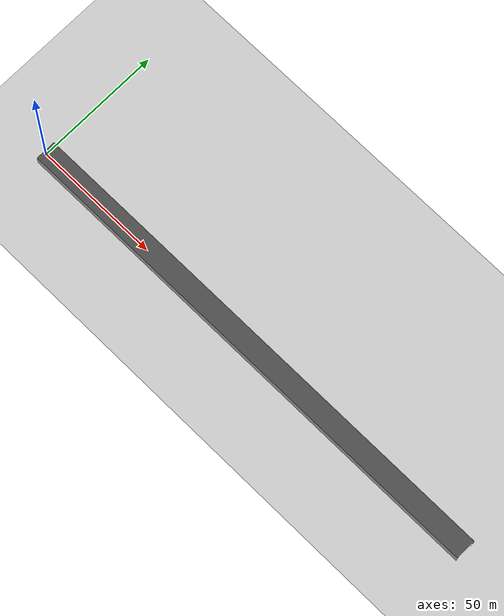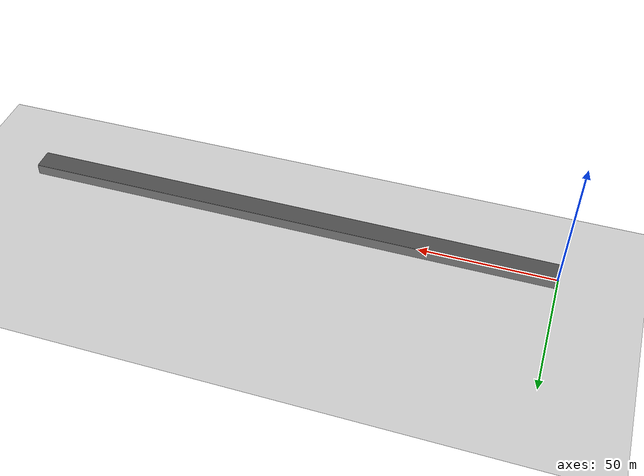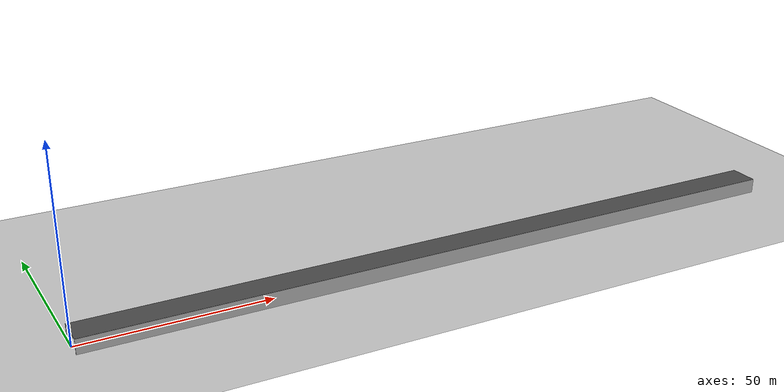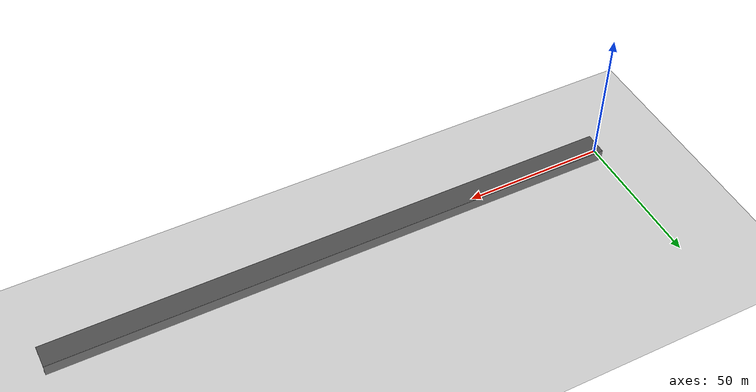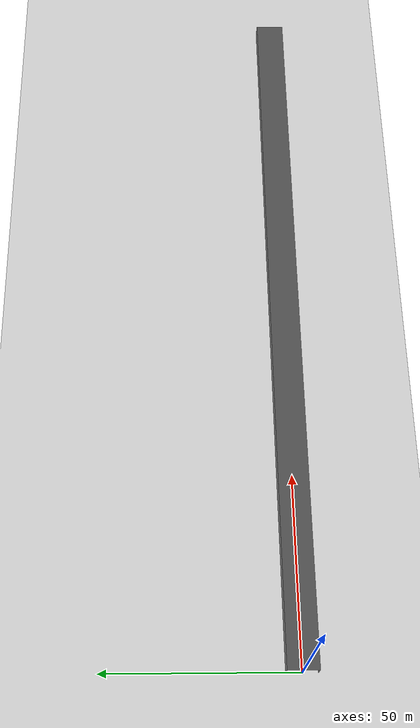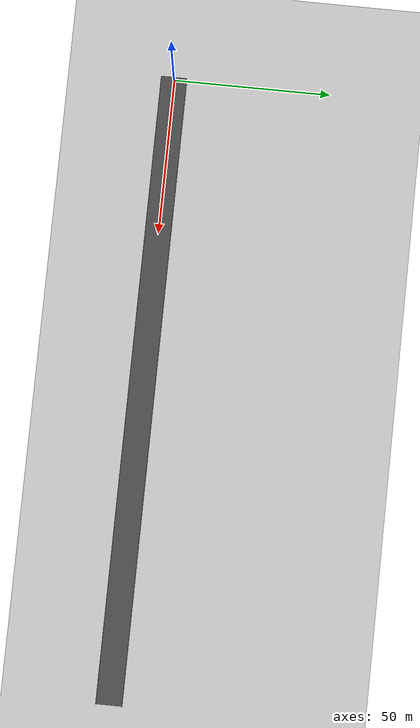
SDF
<?xml version="1.0" ?>
<sdf version="1.6">
  <world name="tunnel_world">
    <include><uri>model://sun</uri></include>
    <include><uri>model://ground_plane</uri></include>

    <model name="tunnel_walls">
      <static>true</static>
      <link name="link">
        <!-- 左墙 -->
        <visual name="wall_left_vis">
          <pose>100.0 4.0 2.0 0 0 0</pose>
          <geometry><box><size>200.0 0.2 4.0</size></box></geometry>
          <material><script><name>Gazebo/Grey</name></script></material>
        </visual>
        <collision name="wall_left_col">
          <pose>100.0 4.0 2.0 0 0 0</pose>
          <geometry><box><size>200.0 0.2 4.0</size></box></geometry>
        </collision>

        <!-- 右墙 -->
        <visual name="wall_right_vis">
          <pose>100.0 -4.0 2.0 0 0 0</pose>
          <geometry><box><size>200.0 0.2 4.0</size></box></geometry>
          <material><script><name>Gazebo/Grey</name></script></material>
        </visual>
        <collision name="wall_right_col">
          <pose>100.0 -4.0 2.0 0 0 0</pose>
          <geometry><box><size>200.0 0.2 4.0</size></box></geometry>
        </collision>

        <!-- 天花板 (可选，为了像隧道) -->
        <visual name="ceiling">
          <pose>100.0 0 4.0 0 0 0</pose>
          <geometry><box><size>200.0 8.0 0.1</size></box></geometry>
          <material><script><name>Gazebo/DarkGrey</name></script></material>
        </visual>
      </link>
    </model>

    <model name="ref_pole_0">
      <pose>0.0 3.0 0.5 0 0 0</pose>
      <static>true</static>
      <link name="link">
        <collision name="collision">
          <geometry><cylinder><radius>0.1</radius><length>1.0</length></cylinder></geometry>
          <laser_retro>200.0</laser_retro>
        </collision>
        <visual name="visual">
          <geometry><cylinder><radius>0.1</radius><length>1.0</length></cylinder></geometry>
          <material><script><name>Gazebo/White</name></script></material>
        </visual>
      </link>
    </model>

    <model name="ref_pole_1">
      <pose>5.0 3.0 0.5 0 0 0</pose>
      <static>true</static>
      <link name="link">
        <collision name="collision">
          <geometry><cylinder><radius>0.1</radius><length>1.0</length></cylinder></geometry>
          <laser_retro>200.0</laser_retro>
        </collision>
        <visual name="visual">
          <geometry><cylinder><radius>0.1</radius><length>1.0</length></cylinder></geometry>
          <material><script><name>Gazebo/White</name></script></material>
        </visual>
      </link>
    </model>

    <model name="ref_pole_2">
      <pose>10.0 3.0 0.5 0 0 0</pose>
      <static>true</static>
      <link name="link">
        <collision name="collision">
          <geometry><cylinder><radius>0.1</radius><length>1.0</length></cylinder></geometry>
          <laser_retro>200.0</laser_retro>
        </collision>
        <visual name="visual">
          <geometry><cylinder><radius>0.1</radius><length>1.0</length></cylinder></geometry>
          <material><script><name>Gazebo/White</name></script></material>
        </visual>
      </link>
    </model>

    <model name="ref_pole_3">
      <pose>15.0 3.0 0.5 0 0 0</pose>
      <static>true</static>
      <link name="link">
        <collision name="collision">
          <geometry><cylinder><radius>0.1</radius><length>1.0</length></cylinder></geometry>
          <laser_retro>200.0</laser_retro>
        </collision>
        <visual name="visual">
          <geometry><cylinder><radius>0.1</radius><length>1.0</length></cylinder></geometry>
          <material><script><name>Gazebo/White</name></script></material>
        </visual>
      </link>
    </model>

    <model name="ref_pole_4">
      <pose>20.0 3.0 0.5 0 0 0</pose>
      <static>true</static>
      <link name="link">
        <collision name="collision">
          <geometry><cylinder><radius>0.1</radius><length>1.0</length></cylinder></geometry>
          <laser_retro>200.0</laser_retro>
        </collision>
        <visual name="visual">
          <geometry><cylinder><radius>0.1</radius><length>1.0</length></cylinder></geometry>
          <material><script><name>Gazebo/White</name></script></material>
        </visual>
      </link>
    </model>

    <model name="ref_pole_5">
      <pose>25.0 3.0 0.5 0 0 0</pose>
      <static>true</static>
      <link name="link">
        <collision name="collision">
          <geometry><cylinder><radius>0.1</radius><length>1.0</length></cylinder></geometry>
          <laser_retro>200.0</laser_retro>
        </collision>
        <visual name="visual">
          <geometry><cylinder><radius>0.1</radius><length>1.0</length></cylinder></geometry>
          <material><script><name>Gazebo/White</name></script></material>
        </visual>
      </link>
    </model>

    <model name="ref_pole_6">
      <pose>30.0 3.0 0.5 0 0 0</pose>
      <static>true</static>
      <link name="link">
        <collision name="collision">
          <geometry><cylinder><radius>0.1</radius><length>1.0</length></cylinder></geometry>
          <laser_retro>200.0</laser_retro>
        </collision>
        <visual name="visual">
          <geometry><cylinder><radius>0.1</radius><length>1.0</length></cylinder></geometry>
          <material><script><name>Gazebo/White</name></script></material>
        </visual>
      </link>
    </model>

    <model name="ref_pole_7">
      <pose>35.0 3.0 0.5 0 0 0</pose>
      <static>true</static>
      <link name="link">
        <collision name="collision">
          <geometry><cylinder><radius>0.1</radius><length>1.0</length></cylinder></geometry>
          <laser_retro>200.0</laser_retro>
        </collision>
        <visual name="visual">
          <geometry><cylinder><radius>0.1</radius><length>1.0</length></cylinder></geometry>
          <material><script><name>Gazebo/White</name></script></material>
        </visual>
      </link>
    </model>

    <model name="ref_pole_8">
      <pose>40.0 3.0 0.5 0 0 0</pose>
      <static>true</static>
      <link name="link">
        <collision name="collision">
          <geometry><cylinder><radius>0.1</radius><length>1.0</length></cylinder></geometry>
          <laser_retro>200.0</laser_retro>
        </collision>
        <visual name="visual">
          <geometry><cylinder><radius>0.1</radius><length>1.0</length></cylinder></geometry>
          <material><script><name>Gazebo/White</name></script></material>
        </visual>
      </link>
    </model>

    <model name="ref_pole_9">
      <pose>45.0 3.0 0.5 0 0 0</pose>
      <static>true</static>
      <link name="link">
        <collision name="collision">
          <geometry><cylinder><radius>0.1</radius><length>1.0</length></cylinder></geometry>
          <laser_retro>200.0</laser_retro>
        </collision>
        <visual name="visual">
          <geometry><cylinder><radius>0.1</radius><length>1.0</length></cylinder></geometry>
          <material><script><name>Gazebo/White</name></script></material>
        </visual>
      </link>
    </model>

    <model name="ref_pole_10">
      <pose>50.0 3.0 0.5 0 0 0</pose>
      <static>true</static>
      <link name="link">
        <collision name="collision">
          <geometry><cylinder><radius>0.1</radius><length>1.0</length></cylinder></geometry>
          <laser_retro>200.0</laser_retro>
        </collision>
        <visual name="visual">
          <geometry><cylinder><radius>0.1</radius><length>1.0</length></cylinder></geometry>
          <material><script><name>Gazebo/White</name></script></material>
        </visual>
      </link>
    </model>

    <model name="ref_pole_11">
      <pose>55.0 3.0 0.5 0 0 0</pose>
      <static>true</static>
      <link name="link">
        <collision name="collision">
          <geometry><cylinder><radius>0.1</radius><length>1.0</length></cylinder></geometry>
          <laser_retro>200.0</laser_retro>
        </collision>
        <visual name="visual">
          <geometry><cylinder><radius>0.1</radius><length>1.0</length></cylinder></geometry>
          <material><script><name>Gazebo/White</name></script></material>
        </visual>
      </link>
    </model>

    <model name="ref_pole_12">
      <pose>60.0 3.0 0.5 0 0 0</pose>
      <static>true</static>
      <link name="link">
        <collision name="collision">
          <geometry><cylinder><radius>0.1</radius><length>1.0</length></cylinder></geometry>
          <laser_retro>200.0</laser_retro>
        </collision>
        <visual name="visual">
          <geometry><cylinder><radius>0.1</radius><length>1.0</length></cylinder></geometry>
          <material><script><name>Gazebo/White</name></script></material>
        </visual>
      </link>
    </model>

    <model name="ref_pole_13">
      <pose>65.0 3.0 0.5 0 0 0</pose>
      <static>true</static>
      <link name="link">
        <collision name="collision">
          <geometry><cylinder><radius>0.1</radius><length>1.0</length></cylinder></geometry>
          <laser_retro>200.0</laser_retro>
        </collision>
        <visual name="visual">
          <geometry><cylinder><radius>0.1</radius><length>1.0</length></cylinder></geometry>
          <material><script><name>Gazebo/White</name></script></material>
        </visual>
      </link>
    </model>

    <model name="ref_pole_14">
      <pose>70.0 3.0 0.5 0 0 0</pose>
      <static>true</static>
      <link name="link">
        <collision name="collision">
          <geometry><cylinder><radius>0.1</radius><length>1.0</length></cylinder></geometry>
          <laser_retro>200.0</laser_retro>
        </collision>
        <visual name="visual">
          <geometry><cylinder><radius>0.1</radius><length>1.0</length></cylinder></geometry>
          <material><script><name>Gazebo/White</name></script></material>
        </visual>
      </link>
    </model>

    <model name="ref_pole_15">
      <pose>75.0 3.0 0.5 0 0 0</pose>
      <static>true</static>
      <link name="link">
        <collision name="collision">
          <geometry><cylinder><radius>0.1</radius><length>1.0</length></cylinder></geometry>
          <laser_retro>200.0</laser_retro>
        </collision>
        <visual name="visual">
          <geometry><cylinder><radius>0.1</radius><length>1.0</length></cylinder></geometry>
          <material><script><name>Gazebo/White</name></script></material>
        </visual>
      </link>
    </model>

    <model name="ref_pole_16">
      <pose>80.0 3.0 0.5 0 0 0</pose>
      <static>true</static>
      <link name="link">
        <collision name="collision">
          <geometry><cylinder><radius>0.1</radius><length>1.0</length></cylinder></geometry>
          <laser_retro>200.0</laser_retro>
        </collision>
        <visual name="visual">
          <geometry><cylinder><radius>0.1</radius><length>1.0</length></cylinder></geometry>
          <material><script><name>Gazebo/White</name></script></material>
        </visual>
      </link>
    </model>

    <model name="ref_pole_17">
      <pose>85.0 3.0 0.5 0 0 0</pose>
      <static>true</static>
      <link name="link">
        <collision name="collision">
          <geometry><cylinder><radius>0.1</radius><length>1.0</length></cylinder></geometry>
          <laser_retro>200.0</laser_retro>
        </collision>
        <visual name="visual">
          <geometry><cylinder><radius>0.1</radius><length>1.0</length></cylinder></geometry>
          <material><script><name>Gazebo/White</name></script></material>
        </visual>
      </link>
    </model>

    <model name="ref_pole_18">
      <pose>90.0 3.0 0.5 0 0 0</pose>
      <static>true</static>
      <link name="link">
        <collision name="collision">
          <geometry><cylinder><radius>0.1</radius><length>1.0</length></cylinder></geometry>
          <laser_retro>200.0</laser_retro>
        </collision>
        <visual name="visual">
          <geometry><cylinder><radius>0.1</radius><length>1.0</length></cylinder></geometry>
          <material><script><name>Gazebo/White</name></script></material>
        </visual>
      </link>
    </model>

    <model name="ref_pole_19">
      <pose>95.0 3.0 0.5 0 0 0</pose>
      <static>true</static>
      <link name="link">
        <collision name="collision">
          <geometry><cylinder><radius>0.1</radius><length>1.0</length></cylinder></geometry>
          <laser_retro>200.0</laser_retro>
        </collision>
        <visual name="visual">
          <geometry><cylinder><radius>0.1</radius><length>1.0</length></cylinder></geometry>
          <material><script><name>Gazebo/White</name></script></material>
        </visual>
      </link>
    </model>

    <model name="ref_pole_20">
      <pose>100.0 3.0 0.5 0 0 0</pose>
      <static>true</static>
      <link name="link">
        <collision name="collision">
          <geometry><cylinder><radius>0.1</radius><length>1.0</length></cylinder></geometry>
          <laser_retro>200.0</laser_retro>
        </collision>
        <visual name="visual">
          <geometry><cylinder><radius>0.1</radius><length>1.0</length></cylinder></geometry>
          <material><script><name>Gazebo/White</name></script></material>
        </visual>
      </link>
    </model>

    <model name="ref_pole_21">
      <pose>105.0 3.0 0.5 0 0 0</pose>
      <static>true</static>
      <link name="link">
        <collision name="collision">
          <geometry><cylinder><radius>0.1</radius><length>1.0</length></cylinder></geometry>
          <laser_retro>200.0</laser_retro>
        </collision>
        <visual name="visual">
          <geometry><cylinder><radius>0.1</radius><length>1.0</length></cylinder></geometry>
          <material><script><name>Gazebo/White</name></script></material>
        </visual>
      </link>
    </model>

    <model name="ref_pole_22">
      <pose>110.0 3.0 0.5 0 0 0</pose>
      <static>true</static>
      <link name="link">
        <collision name="collision">
          <geometry><cylinder><radius>0.1</radius><length>1.0</length></cylinder></geometry>
          <laser_retro>200.0</laser_retro>
        </collision>
        <visual name="visual">
          <geometry><cylinder><radius>0.1</radius><length>1.0</length></cylinder></geometry>
          <material><script><name>Gazebo/White</name></script></material>
        </visual>
      </link>
    </model>

    <model name="ref_pole_23">
      <pose>115.0 3.0 0.5 0 0 0</pose>
      <static>true</static>
      <link name="link">
        <collision name="collision">
          <geometry><cylinder><radius>0.1</radius><length>1.0</length></cylinder></geometry>
          <laser_retro>200.0</laser_retro>
        </collision>
        <visual name="visual">
          <geometry><cylinder><radius>0.1</radius><length>1.0</length></cylinder></geometry>
          <material><script><name>Gazebo/White</name></script></material>
        </visual>
      </link>
    </model>

    <model name="ref_pole_24">
      <pose>120.0 3.0 0.5 0 0 0</pose>
      <static>true</static>
      <link name="link">
        <collision name="collision">
          <geometry><cylinder><radius>0.1</radius><length>1.0</length></cylinder></geometry>
          <laser_retro>200.0</laser_retro>
        </collision>
        <visual name="visual">
          <geometry><cylinder><radius>0.1</radius><length>1.0</length></cylinder></geometry>
          <material><script><name>Gazebo/White</name></script></material>
        </visual>
      </link>
    </model>

    <model name="ref_pole_25">
      <pose>125.0 3.0 0.5 0 0 0</pose>
      <static>true</static>
      <link name="link">
        <collision name="collision">
          <geometry><cylinder><radius>0.1</radius><length>1.0</length></cylinder></geometry>
          <laser_retro>200.0</laser_retro>
        </collision>
        <visual name="visual">
          <geometry><cylinder><radius>0.1</radius><length>1.0</length></cylinder></geometry>
          <material><script><name>Gazebo/White</name></script></material>
        </visual>
      </link>
    </model>

    <model name="ref_pole_26">
      <pose>130.0 3.0 0.5 0 0 0</pose>
      <static>true</static>
      <link name="link">
        <collision name="collision">
          <geometry><cylinder><radius>0.1</radius><length>1.0</length></cylinder></geometry>
          <laser_retro>200.0</laser_retro>
        </collision>
        <visual name="visual">
          <geometry><cylinder><radius>0.1</radius><length>1.0</length></cylinder></geometry>
          <material><script><name>Gazebo/White</name></script></material>
        </visual>
      </link>
    </model>

    <model name="ref_pole_27">
      <pose>135.0 3.0 0.5 0 0 0</pose>
      <static>true</static>
      <link name="link">
        <collision name="collision">
          <geometry><cylinder><radius>0.1</radius><length>1.0</length></cylinder></geometry>
          <laser_retro>200.0</laser_retro>
        </collision>
        <visual name="visual">
          <geometry><cylinder><radius>0.1</radius><length>1.0</length></cylinder></geometry>
          <material><script><name>Gazebo/White</name></script></material>
        </visual>
      </link>
    </model>

    <model name="ref_pole_28">
      <pose>140.0 3.0 0.5 0 0 0</pose>
      <static>true</static>
      <link name="link">
        <collision name="collision">
          <geometry><cylinder><radius>0.1</radius><length>1.0</length></cylinder></geometry>
          <laser_retro>200.0</laser_retro>
        </collision>
        <visual name="visual">
          <geometry><cylinder><radius>0.1</radius><length>1.0</length></cylinder></geometry>
          <material><script><name>Gazebo/White</name></script></material>
        </visual>
      </link>
    </model>

    <model name="ref_pole_29">
      <pose>145.0 3.0 0.5 0 0 0</pose>
      <static>true</static>
      <link name="link">
        <collision name="collision">
          <geometry><cylinder><radius>0.1</radius><length>1.0</length></cylinder></geometry>
          <laser_retro>200.0</laser_retro>
        </collision>
        <visual name="visual">
          <geometry><cylinder><radius>0.1</radius><length>1.0</length></cylinder></geometry>
          <material><script><name>Gazebo/White</name></script></material>
        </visual>
      </link>
    </model>

    <model name="ref_pole_30">
      <pose>150.0 3.0 0.5 0 0 0</pose>
      <static>true</static>
      <link name="link">
        <collision name="collision">
          <geometry><cylinder><radius>0.1</radius><length>1.0</length></cylinder></geometry>
          <laser_retro>200.0</laser_retro>
        </collision>
        <visual name="visual">
          <geometry><cylinder><radius>0.1</radius><length>1.0</length></cylinder></geometry>
          <material><script><name>Gazebo/White</name></script></material>
        </visual>
      </link>
    </model>

    <model name="ref_pole_31">
      <pose>155.0 3.0 0.5 0 0 0</pose>
      <static>true</static>
      <link name="link">
        <collision name="collision">
          <geometry><cylinder><radius>0.1</radius><length>1.0</length></cylinder></geometry>
          <laser_retro>200.0</laser_retro>
        </collision>
        <visual name="visual">
          <geometry><cylinder><radius>0.1</radius><length>1.0</length></cylinder></geometry>
          <material><script><name>Gazebo/White</name></script></material>
        </visual>
      </link>
    </model>

    <model name="ref_pole_32">
      <pose>160.0 3.0 0.5 0 0 0</pose>
      <static>true</static>
      <link name="link">
        <collision name="collision">
          <geometry><cylinder><radius>0.1</radius><length>1.0</length></cylinder></geometry>
          <laser_retro>200.0</laser_retro>
        </collision>
        <visual name="visual">
          <geometry><cylinder><radius>0.1</radius><length>1.0</length></cylinder></geometry>
          <material><script><name>Gazebo/White</name></script></material>
        </visual>
      </link>
    </model>

    <model name="ref_pole_33">
      <pose>165.0 3.0 0.5 0 0 0</pose>
      <static>true</static>
      <link name="link">
        <collision name="collision">
          <geometry><cylinder><radius>0.1</radius><length>1.0</length></cylinder></geometry>
          <laser_retro>200.0</laser_retro>
        </collision>
        <visual name="visual">
          <geometry><cylinder><radius>0.1</radius><length>1.0</length></cylinder></geometry>
          <material><script><name>Gazebo/White</name></script></material>
        </visual>
      </link>
    </model>

    <model name="ref_pole_34">
      <pose>170.0 3.0 0.5 0 0 0</pose>
      <static>true</static>
      <link name="link">
        <collision name="collision">
          <geometry><cylinder><radius>0.1</radius><length>1.0</length></cylinder></geometry>
          <laser_retro>200.0</laser_retro>
        </collision>
        <visual name="visual">
          <geometry><cylinder><radius>0.1</radius><length>1.0</length></cylinder></geometry>
          <material><script><name>Gazebo/White</name></script></material>
        </visual>
      </link>
    </model>

    <model name="ref_pole_35">
      <pose>175.0 3.0 0.5 0 0 0</pose>
      <static>true</static>
      <link name="link">
        <collision name="collision">
          <geometry><cylinder><radius>0.1</radius><length>1.0</length></cylinder></geometry>
          <laser_retro>200.0</laser_retro>
        </collision>
        <visual name="visual">
          <geometry><cylinder><radius>0.1</radius><length>1.0</length></cylinder></geometry>
          <material><script><name>Gazebo/White</name></script></material>
        </visual>
      </link>
    </model>

    <model name="ref_pole_36">
      <pose>180.0 3.0 0.5 0 0 0</pose>
      <static>true</static>
      <link name="link">
        <collision name="collision">
          <geometry><cylinder><radius>0.1</radius><length>1.0</length></cylinder></geometry>
          <laser_retro>200.0</laser_retro>
        </collision>
        <visual name="visual">
          <geometry><cylinder><radius>0.1</radius><length>1.0</length></cylinder></geometry>
          <material><script><name>Gazebo/White</name></script></material>
        </visual>
      </link>
    </model>

    <model name="ref_pole_37">
      <pose>185.0 3.0 0.5 0 0 0</pose>
      <static>true</static>
      <link name="link">
        <collision name="collision">
          <geometry><cylinder><radius>0.1</radius><length>1.0</length></cylinder></geometry>
          <laser_retro>200.0</laser_retro>
        </collision>
        <visual name="visual">
          <geometry><cylinder><radius>0.1</radius><length>1.0</length></cylinder></geometry>
          <material><script><name>Gazebo/White</name></script></material>
        </visual>
      </link>
    </model>

    <model name="ref_pole_38">
      <pose>190.0 3.0 0.5 0 0 0</pose>
      <static>true</static>
      <link name="link">
        <collision name="collision">
          <geometry><cylinder><radius>0.1</radius><length>1.0</length></cylinder></geometry>
          <laser_retro>200.0</laser_retro>
        </collision>
        <visual name="visual">
          <geometry><cylinder><radius>0.1</radius><length>1.0</length></cylinder></geometry>
          <material><script><name>Gazebo/White</name></script></material>
        </visual>
      </link>
    </model>

    <model name="ref_pole_39">
      <pose>195.0 3.0 0.5 0 0 0</pose>
      <static>true</static>
      <link name="link">
        <collision name="collision">
          <geometry><cylinder><radius>0.1</radius><length>1.0</length></cylinder></geometry>
          <laser_retro>200.0</laser_retro>
        </collision>
        <visual name="visual">
          <geometry><cylinder><radius>0.1</radius><length>1.0</length></cylinder></geometry>
          <material><script><name>Gazebo/White</name></script></material>
        </visual>
      </link>
    </model>

    <model name="ref_pole_40">
      <pose>200.0 3.0 0.5 0 0 0</pose>
      <static>true</static>
      <link name="link">
        <collision name="collision">
          <geometry><cylinder><radius>0.1</radius><length>1.0</length></cylinder></geometry>
          <laser_retro>200.0</laser_retro>
        </collision>
        <visual name="visual">
          <geometry><cylinder><radius>0.1</radius><length>1.0</length></cylinder></geometry>
          <material><script><name>Gazebo/White</name></script></material>
        </visual>
      </link>
    </model>

  </world>
</sdf>
